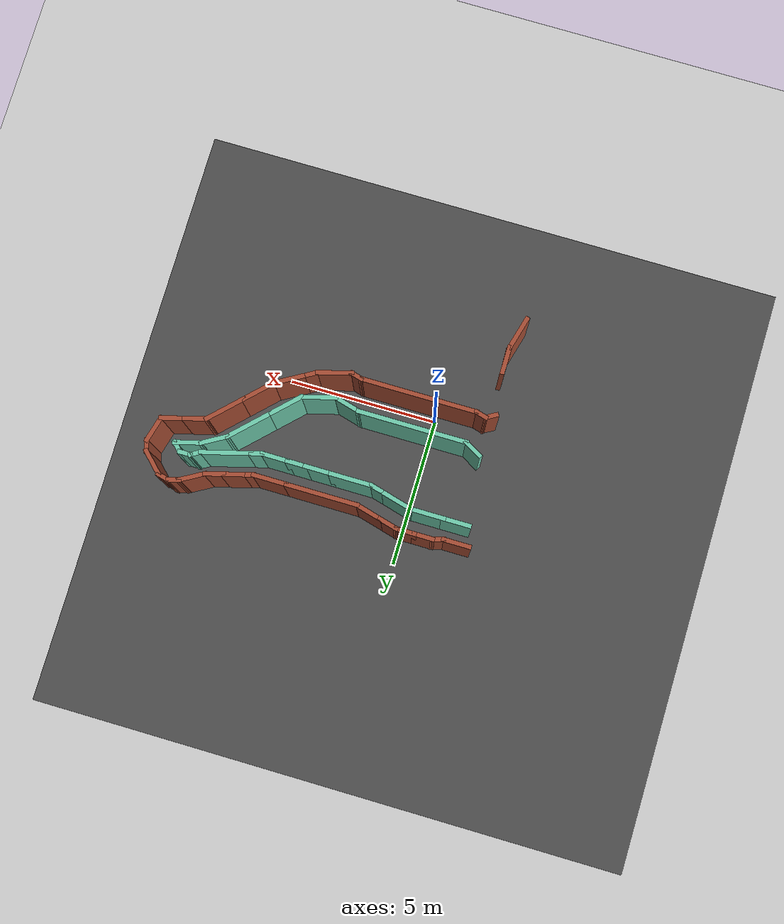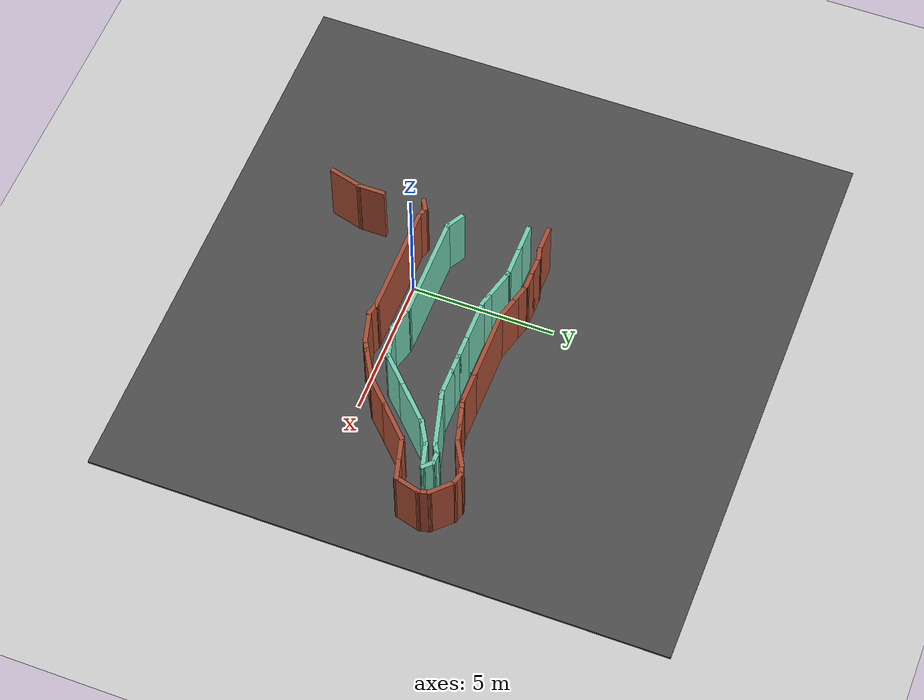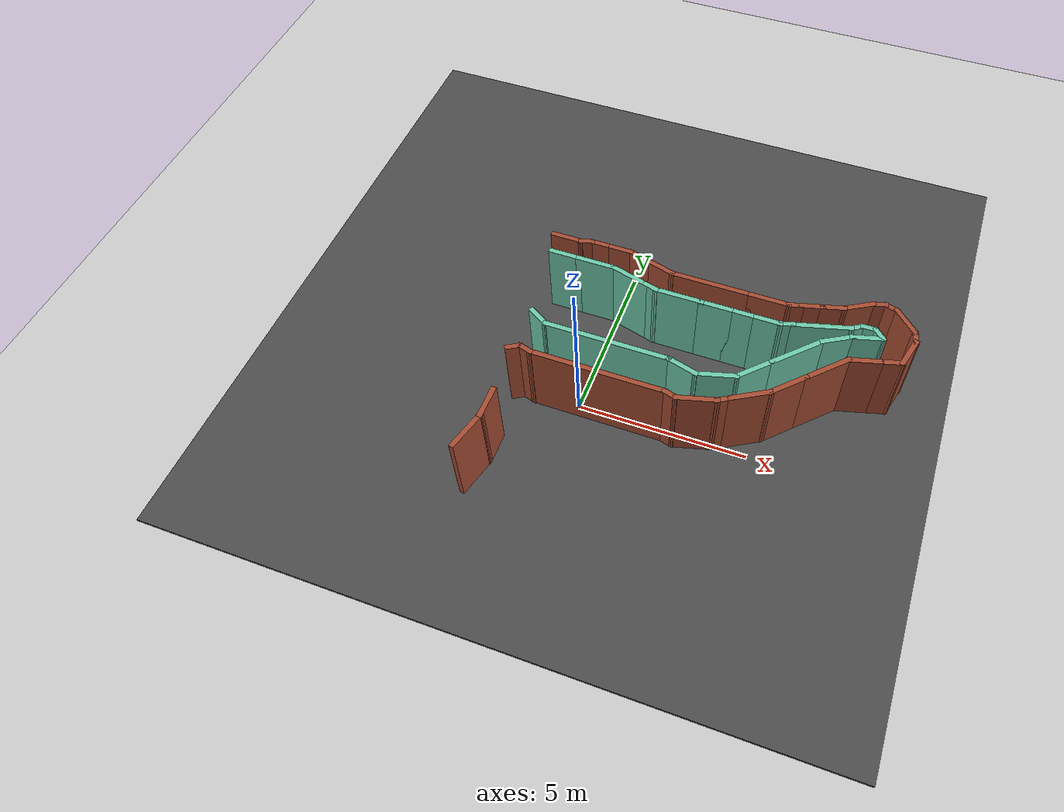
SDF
<sdf version="1.7">
 <world name="default">
  <model name="ground_plane">
   <static>1</static>
   <link name="link">
    <collision name="collision">
     <geometry><plane><normal>0 0 1</normal><size>100 100</size></plane></geometry>
     <surface><friction><ode><mu>100</mu><mu2>50</mu2></ode></friction></surface>
    </collision>
    <visual name="visual">
     <cast_shadows>0</cast_shadows>
     <geometry><plane><normal>0 0 1</normal><size>100 100</size></plane></geometry>
     <material>
      <script><uri>file://media/materials/scripts/gazebo.material</uri><name>Gazebo/Grey</name></script>
     </material>
    </visual>
   </link>
  </model>
  <model name="f1race">
   <pose>0.074946 0.030873 0 0 -0 0</pose>
   <link name="Wall_15">
    <collision name="Wall_15_Collision">
     <geometry><box><size>1 0.15 2.5</size></box></geometry>
     <pose>0 0 1.25 0 -0 0</pose>
    </collision>
    <visual name="Wall_15_Visual">
     <pose>0 0 1.25 0 -0 0</pose>
     <geometry><box><size>1 0.15 2.5</size></box></geometry>
     <material>
      <script><uri>file://media/materials/scripts/gazebo.material</uri><name>Gazebo/Bricks</name></script>
      <ambient>1 1 1 1</ambient>
     </material>
     <meta><layer>0</layer></meta>
    </visual>
    <pose>-1.90724 3.94835 0 0 -0 0</pose>
   </link>
   <link name="Wall_16">
    <collision name="Wall_16_Collision">
     <geometry><box><size>0.5 0.15 2.5</size></box></geometry>
     <pose>0 0 1.25 0 -0 0</pose>
    </collision>
    <visual name="Wall_16_Visual">
     <pose>0 0 1.25 0 -0 0</pose>
     <geometry><box><size>0.5 0.15 2.5</size></box></geometry>
     <material>
      <script><uri>file://media/materials/scripts/gazebo.material</uri><name>Gazebo/Bricks</name></script>
      <ambient>1 1 1 1</ambient>
     </material>
     <meta><layer>0</layer></meta>
    </visual>
    <pose>-1.3132 3.99365 0 0 -0 0.261799</pose>
   </link>
   <link name="Wall_17">
    <collision name="Wall_17_Collision">
     <geometry><box><size>0.75 0.15 2.5</size></box></geometry>
     <pose>0 0 1.25 0 -0 0</pose>
    </collision>
    <visual name="Wall_17_Visual">
     <pose>0 0 1.25 0 -0 0</pose>
     <geometry><box><size>0.75 0.15 2.5</size></box></geometry>
     <material>
      <script><uri>file://media/materials/scripts/gazebo.material</uri><name>Gazebo/Bricks</name></script>
      <ambient>1 1 1 1</ambient>
     </material>
     <meta><layer>0</layer></meta>
    </visual>
    <pose>-0.844161 4.03894 0 0 -0 0</pose>
   </link>
   <link name="Wall_18">
    <collision name="Wall_18_Collision">
     <geometry><box><size>0.75 0.15 2.5</size></box></geometry>
     <pose>0 0 1.25 0 -0 0</pose>
    </collision>
    <visual name="Wall_18_Visual">
     <pose>0 0 1.25 0 -0 0</pose>
     <geometry><box><size>0.75 0.15 2.5</size></box></geometry>
     <material>
      <script><uri>file://media/materials/scripts/gazebo.material</uri><name>Gazebo/Bricks</name></script>
      <ambient>1 1 1 1</ambient>
     </material>
     <meta><layer>0</layer></meta>
    </visual>
    <pose>-0.244161 4.03894 0 0 -0 0</pose>
   </link>
   <link name="Wall_19">
    <collision name="Wall_19_Collision">
     <geometry><box><size>0.75 0.15 2.5</size></box></geometry>
     <pose>0 0 1.25 0 -0 0</pose>
    </collision>
    <visual name="Wall_19_Visual">
     <pose>0 0 1.25 0 -0 0</pose>
     <geometry><box><size>0.75 0.15 2.5</size></box></geometry>
     <material>
      <script><uri>file://media/materials/scripts/gazebo.material</uri><name>Gazebo/Bricks</name></script>
      <ambient>1 1 1 1</ambient>
     </material>
     <meta><layer>0</layer></meta>
    </visual>
    <pose>0.345617 3.96129 0 0 -0 -0.261799</pose>
   </link>
   <link name="Wall_20">
    <collision name="Wall_20_Collision">
     <geometry><box><size>1 0.15 2.5</size></box></geometry>
     <pose>0 0 1.25 0 -0 0</pose>
    </collision>
    <visual name="Wall_20_Visual">
     <pose>0 0 1.25 0 -0 0</pose>
     <geometry><box><size>1 0.15 2.5</size></box></geometry>
     <material>
      <script><uri>file://media/materials/scripts/gazebo.material</uri><name>Gazebo/Bricks</name></script>
      <ambient>1 1 1 1</ambient>
     </material>
     <meta><layer>0</layer></meta>
    </visual>
    <pose>1.04591 3.77365 0 0 -0 -0.261799</pose>
   </link>
   <link name="Wall_21">
    <collision name="Wall_21_Collision">
     <geometry><box><size>2.5 0.15 2.5</size></box></geometry>
     <pose>0 0 1.25 0 -0 0</pose>
    </collision>
    <visual name="Wall_21_Visual">
     <pose>0 0 1.25 0 -0 0</pose>
     <geometry><box><size>2.5 0.15 2.5</size></box></geometry>
     <material>
      <script><uri>file://media/materials/scripts/gazebo.material</uri><name>Gazebo/Bricks</name></script>
      <ambient>1 1 1 1</ambient>
     </material>
     <meta><layer>0</layer></meta>
    </visual>
    <pose>2.63143 3.66365 0 0 -0 0</pose>
   </link>
   <link name="Wall_22">
    <collision name="Wall_22_Collision">
     <geometry><box><size>1.25 0.15 2.5</size></box></geometry>
     <pose>0 0 1.25 0 -0 0</pose>
    </collision>
    <visual name="Wall_22_Visual">
     <pose>0 0 1.25 0 -0 0</pose>
     <geometry><box><size>1.25 0.15 2.5</size></box></geometry>
     <material>
      <script><uri>file://media/materials/scripts/gazebo.material</uri><name>Gazebo/Bricks</name></script>
      <ambient>1 1 1 1</ambient>
     </material>
     <meta><layer>0</layer></meta>
    </visual>
    <pose>4.35643 3.66365 0 0 -0 0</pose>
   </link>
   <link name="Wall_23">
    <collision name="Wall_23_Collision">
     <geometry><box><size>0.5 0.15 2.5</size></box></geometry>
     <pose>0 0 1.25 0 -0 0</pose>
    </collision>
    <visual name="Wall_23_Visual">
     <pose>0 0 1.25 0 -0 0</pose>
     <geometry><box><size>0.5 0.15 2.5</size></box></geometry>
     <material>
      <script><uri>file://media/materials/scripts/gazebo.material</uri><name>Gazebo/Bricks</name></script>
      <ambient>1 1 1 1</ambient>
     </material>
     <meta><layer>0</layer></meta>
    </visual>
    <pose>5.07547 3.70895 0 0 -0 0.261799</pose>
   </link>
   <link name="Wall_24">
    <collision name="Wall_24_Collision">
     <geometry><box><size>0.75 0.15 2.5</size></box></geometry>
     <pose>0 0 1.25 0 -0 0</pose>
    </collision>
    <visual name="Wall_24_Visual">
     <pose>0 0 1.25 0 -0 0</pose>
     <geometry><box><size>0.75 0.15 2.5</size></box></geometry>
     <material>
      <script><uri>file://media/materials/scripts/gazebo.material</uri><name>Gazebo/Bricks</name></script>
      <ambient>1 1 1 1</ambient>
     </material>
     <meta><layer>0</layer></meta>
    </visual>
    <pose>5.53428 3.83189 0 0 -0 0.261799</pose>
   </link>
   <link name="Wall_25">
    <collision name="Wall_25_Collision">
     <geometry><box><size>0.75 0.15 2.5</size></box></geometry>
     <pose>0 0 1.25 0 -0 0</pose>
    </collision>
    <visual name="Wall_25_Visual">
     <pose>0 0 1.25 0 -0 0</pose>
     <geometry><box><size>0.75 0.15 2.5</size></box></geometry>
     <material>
      <script><uri>file://media/materials/scripts/gazebo.material</uri><name>Gazebo/Bricks</name></script>
      <ambient>1 1 1 1</ambient>
     </material>
     <meta><layer>0</layer></meta>
    </visual>
    <pose>6.11384 3.98718 0 0 -0 0.261799</pose>
   </link>
   <link name="Wall_26">
    <collision name="Wall_26_Collision">
     <geometry><box><size>1 0.15 2.5</size></box></geometry>
     <pose>0 0 1.25 0 -0 0</pose>
    </collision>
    <visual name="Wall_26_Visual">
     <pose>0 0 1.25 0 -0 0</pose>
     <geometry><box><size>1 0.15 2.5</size></box></geometry>
     <material>
      <script><uri>file://media/materials/scripts/gazebo.material</uri><name>Gazebo/Bricks</name></script>
      <ambient>1 1 1 1</ambient>
     </material>
     <meta><layer>0</layer></meta>
    </visual>
    <pose>6.77168 4.27732 0 0 -0 0.523599</pose>
   </link>
   <link name="Wall_27">
    <collision name="Wall_27_Collision">
     <geometry><box><size>0.5 0.15 2.5</size></box></geometry>
     <pose>0 0 1.25 0 -0 0</pose>
    </collision>
    <visual name="Wall_27_Visual">
     <pose>0 0 1.25 0 -0 0</pose>
     <geometry><box><size>0.5 0.15 2.5</size></box></geometry>
     <material>
      <script><uri>file://media/materials/scripts/gazebo.material</uri><name>Gazebo/Bricks</name></script>
      <ambient>1 1 1 1</ambient>
     </material>
     <meta><layer>0</layer></meta>
    </visual>
    <pose>7.30877 4.53512 0 0 -0 0.261799</pose>
   </link>
   <link name="Wall_28">
    <collision name="Wall_28_Collision">
     <geometry><box><size>0.5 0.15 2.5</size></box></geometry>
     <pose>0 0 1.25 0 -0 0</pose>
    </collision>
    <visual name="Wall_28_Visual">
     <pose>0 0 1.25 0 -0 0</pose>
     <geometry><box><size>0.5 0.15 2.5</size></box></geometry>
     <material>
      <script><uri>file://media/materials/scripts/gazebo.material</uri><name>Gazebo/Bricks</name></script>
      <ambient>1 1 1 1</ambient>
     </material>
     <meta><layer>0</layer></meta>
    </visual>
    <pose>7.64685 4.53512 0 0 -0 -0.261799</pose>
   </link>
   <link name="Wall_29">
    <collision name="Wall_29_Collision">
     <geometry><box><size>1 0.15 2.5</size></box></geometry>
     <pose>0 0 1.25 0 -0 0</pose>
    </collision>
    <visual name="Wall_29_Visual">
     <pose>0 0 1.25 0 -0 0</pose>
     <geometry><box><size>1 0.15 2.5</size></box></geometry>
     <material>
      <script><uri>file://media/materials/scripts/gazebo.material</uri><name>Gazebo/Bricks</name></script>
      <ambient>1 1 1 1</ambient>
     </material>
     <meta><layer>0</layer></meta>
    </visual>
    <pose>8.11641 4.1893 0 0 -0 -0.785398</pose>
   </link>
   <link name="Wall_30">
    <collision name="Wall_30_Collision">
     <geometry><box><size>0.5 0.15 2.5</size></box></geometry>
     <pose>0 0 1.25 0 -0 0</pose>
    </collision>
    <visual name="Wall_30_Visual">
     <pose>0 0 1.25 0 -0 0</pose>
     <geometry><box><size>0.5 0.15 2.5</size></box></geometry>
     <material>
      <script><uri>file://media/materials/scripts/gazebo.material</uri><name>Gazebo/Bricks</name></script>
      <ambient>1 1 1 1</ambient>
     </material>
     <meta><layer>0</layer></meta>
    </visual>
    <pose>8.46222 3.71974 0 0 -0 -1.309</pose>
   </link>
   <link name="Wall_31">
    <collision name="Wall_31_Collision">
     <geometry><box><size>1 0.15 2.5</size></box></geometry>
     <pose>0 0 1.25 0 -0 0</pose>
    </collision>
    <visual name="Wall_31_Visual">
     <pose>0 0 1.25 0 -0 0</pose>
     <geometry><box><size>1 0.15 2.5</size></box></geometry>
     <material>
      <script><uri>file://media/materials/scripts/gazebo.material</uri><name>Gazebo/Bricks</name></script>
      <ambient>1 1 1 1</ambient>
     </material>
     <meta><layer>0</layer></meta>
    </visual>
    <pose>8.39752 3.14019 0 0 -0 -1.8326</pose>
   </link>
   <link name="Wall_32">
    <collision name="Wall_32_Collision">
     <geometry><box><size>0.75 0.15 2.5</size></box></geometry>
     <pose>0 0 1.25 0 -0 0</pose>
    </collision>
    <visual name="Wall_32_Visual">
     <pose>0 0 1.25 0 -0 0</pose>
     <geometry><box><size>0.75 0.15 2.5</size></box></geometry>
     <material>
      <script><uri>file://media/materials/scripts/gazebo.material</uri><name>Gazebo/Bricks</name></script>
      <ambient>1 1 1 1</ambient>
     </material>
     <meta><layer>0</layer></meta>
    </visual>
    <pose>7.99774 2.65203 0 0 -0 -2.87979</pose>
   </link>
   <link name="Wall_33">
    <collision name="Wall_33_Collision">
     <geometry><box><size>1 0.15 2.5</size></box></geometry>
     <pose>0 0 1.25 0 -0 0</pose>
    </collision>
    <visual name="Wall_33_Visual">
     <pose>0 0 1.25 0 -0 0</pose>
     <geometry><box><size>1 0.15 2.5</size></box></geometry>
     <material>
      <script><uri>file://media/materials/scripts/gazebo.material</uri><name>Gazebo/Bricks</name></script>
      <ambient>1 1 1 1</ambient>
     </material>
     <meta><layer>0</layer></meta>
    </visual>
    <pose>7.29744 2.46438 0 0 -0 -2.87979</pose>
   </link>
   <link name="Wall_34">
    <collision name="Wall_34_Collision">
     <geometry><box><size>1.5 0.15 2.5</size></box></geometry>
     <pose>0 0 1.25 0 -0 0</pose>
    </collision>
    <visual name="Wall_34_Visual">
     <pose>0 0 1.25 0 -0 0</pose>
     <geometry><box><size>1.5 0.15 2.5</size></box></geometry>
     <material>
      <script><uri>file://media/materials/scripts/gazebo.material</uri><name>Gazebo/Bricks</name></script>
      <ambient>1 1 1 1</ambient>
     </material>
     <meta><layer>0</layer></meta>
    </visual>
    <pose>6.40963 1.87709 0 0 -0 -2.35619</pose>
   </link>
   <link name="Wall_35">
    <collision name="Wall_35_Collision">
     <geometry><box><size>1.25 0.15 2.5</size></box></geometry>
     <pose>0 0 1.25 0 -0 0</pose>
    </collision>
    <visual name="Wall_35_Visual">
     <pose>0 0 1.25 0 -0 0</pose>
     <geometry><box><size>1.25 0.15 2.5</size></box></geometry>
     <material>
      <script><uri>file://media/materials/scripts/gazebo.material</uri><name>Gazebo/Bricks</name></script>
      <ambient>1 1 1 1</ambient>
     </material>
     <meta><layer>0</layer></meta>
    </visual>
    <pose>5.54342 1.01088 0 0 -0 -2.35619</pose>
   </link>
   <link name="Wall_36">
    <collision name="Wall_36_Collision">
     <geometry><box><size>1.25 0.15 2.5</size></box></geometry>
     <pose>0 0 1.25 0 -0 0</pose>
    </collision>
    <visual name="Wall_36_Visual">
     <pose>0 0 1.25 0 -0 0</pose>
     <geometry><box><size>1.25 0.15 2.5</size></box></geometry>
     <material>
      <script><uri>file://media/materials/scripts/gazebo.material</uri><name>Gazebo/Bricks</name></script>
      <ambient>1 1 1 1</ambient>
     </material>
     <meta><layer>0</layer></meta>
    </visual>
    <pose>4.6782 0.346971 0 0 -0 -2.61799</pose>
   </link>
   <link name="Wall_37">
    <collision name="Wall_37_Collision">
     <geometry><box><size>0.5 0.15 2.5</size></box></geometry>
     <pose>0 0 1.25 0 -0 0</pose>
    </collision>
    <visual name="Wall_37_Visual">
     <pose>0 0 1.25 0 -0 0</pose>
     <geometry><box><size>0.5 0.15 2.5</size></box></geometry>
     <material>
      <script><uri>file://media/materials/scripts/gazebo.material</uri><name>Gazebo/Bricks</name></script>
      <ambient>1 1 1 1</ambient>
     </material>
     <meta><layer>0</layer></meta>
    </visual>
    <pose>4.05033 -0.015529 0 0 -0 -2.61799</pose>
   </link>
   <link name="Wall_38">
    <collision name="Wall_38_Collision">
     <geometry><box><size>1.25 0.15 2.5</size></box></geometry>
     <pose>0 0 1.25 0 -0 0</pose>
    </collision>
    <visual name="Wall_38_Visual">
     <pose>0 0 1.25 0 -0 0</pose>
     <geometry><box><size>1.25 0.15 2.5</size></box></geometry>
     <material>
      <script><uri>file://media/materials/scripts/gazebo.material</uri><name>Gazebo/Bricks</name></script>
      <ambient>1 1 1 1</ambient>
     </material>
     <meta><layer>0</layer></meta>
    </visual>
    <pose>3.36752 -0.245379 0 0 -0 -2.87979</pose>
   </link>
   <link name="Wall_39">
    <collision name="Wall_39_Collision">
     <geometry><box><size>0.5 0.15 2.5</size></box></geometry>
     <pose>0 0 1.25 0 -0 0</pose>
    </collision>
    <visual name="Wall_39_Visual">
     <pose>0 0 1.25 0 -0 0</pose>
     <geometry><box><size>0.5 0.15 2.5</size></box></geometry>
     <material>
      <script><uri>file://media/materials/scripts/gazebo.material</uri><name>Gazebo/Bricks</name></script>
      <ambient>1 1 1 1</ambient>
     </material>
     <meta><layer>0</layer></meta>
    </visual>
    <pose>2.66722 -0.342436 0 0 -0 2.87979</pose>
   </link>
   <link name="Wall_40">
    <collision name="Wall_40_Collision">
     <geometry><box><size>4 0.15 2.5</size></box></geometry>
     <pose>0 0 1.25 0 -0 0</pose>
    </collision>
    <visual name="Wall_40_Visual">
     <pose>0 0 1.25 0 -0 0</pose>
     <geometry><box><size>4 0.15 2.5</size></box></geometry>
     <material>
      <script><uri>file://media/materials/scripts/gazebo.material</uri><name>Gazebo/Bricks</name></script>
      <ambient>1 1 1 1</ambient>
     </material>
     <meta><layer>0</layer></meta>
    </visual>
    <pose>0.573184 -0.297143 0 0 -0 3.14159</pose>
   </link>
   <link name="Wall_41">
    <collision name="Wall_41_Collision">
     <geometry><box><size>0.5 0.15 2.5</size></box></geometry>
     <pose>0 0 1.25 0 -0 0</pose>
    </collision>
    <visual name="Wall_41_Visual">
     <pose>0 0 1.25 0 -0 0</pose>
     <geometry><box><size>0.5 0.15 2.5</size></box></geometry>
     <material>
      <script><uri>file://media/materials/scripts/gazebo.material</uri><name>Gazebo/Bricks</name></script>
      <ambient>1 1 1 1</ambient>
     </material>
     <meta><layer>0</layer></meta>
    </visual>
    <pose>-1.52085 -0.25185 0 0 -0 2.87979</pose>
   </link>
   <link name="Wall_42">
    <collision name="Wall_42_Collision">
     <geometry><box><size>0.5 0.15 2.5</size></box></geometry>
     <pose>0 0 1.25 0 -0 0</pose>
    </collision>
    <visual name="Wall_42_Visual">
     <pose>0 0 1.25 0 -0 0</pose>
     <geometry><box><size>0.5 0.15 2.5</size></box></geometry>
     <material>
      <script><uri>file://media/materials/scripts/gazebo.material</uri><name>Gazebo/Bricks</name></script>
      <ambient>1 1 1 1</ambient>
     </material>
     <meta><layer>0</layer></meta>
    </visual>
    <pose>-1.84144 -0.294056 0 0 -0 -2.61799</pose>
   </link>
   <link name="Wall_45">
    <collision name="Wall_45_Collision">
     <geometry><box><size>1 0.15 2.5</size></box></geometry>
     <pose>0 0 1.25 0 -0 0</pose>
    </collision>
    <visual name="Wall_45_Visual">
     <pose>0 0 1.25 0 -0 0</pose>
     <geometry><box><size>1 0.15 2.5</size></box></geometry>
     <material>
      <script><uri>file://media/materials/scripts/gazebo.material</uri><name>Gazebo/Bricks</name></script>
      <ambient>1 1 1 1</ambient>
     </material>
     <meta><layer>0</layer></meta>
    </visual>
    <pose>-1.79889 -2.20715 0 0 -0 -1.5708</pose>
   </link>
   <link name="Wall_46">
    <collision name="Wall_46_Collision">
     <geometry><box><size>1.25 0.15 2.5</size></box></geometry>
     <pose>0 0 1.25 0 -0 0</pose>
    </collision>
    <visual name="Wall_46_Visual">
     <pose>0 0 1.25 0 -0 0</pose>
     <geometry><box><size>1.25 0.15 2.5</size></box></geometry>
     <material>
      <script><uri>file://media/materials/scripts/gazebo.material</uri><name>Gazebo/Bricks</name></script>
      <ambient>1 1 1 1</ambient>
     </material>
     <meta><layer>0</layer></meta>
    </visual>
    <pose>-1.94124 -3.16341 0 0 -0 -1.8326</pose>
   </link>
   <link name="Wall_71">
    <collision name="Wall_71_Collision">
     <geometry><box><size>1 0.15 2.5</size></box></geometry>
     <pose>0 0 1.25 0 -0 0</pose>
    </collision>
    <visual name="Wall_71_Visual">
     <pose>0 0 1.25 0 -0 0</pose>
     <geometry><box><size>1 0.15 2.5</size></box></geometry>
     <material>
      <script><uri>file://media/materials/scripts/gazebo.material</uri><name>Gazebo/Grey</name></script>
      <ambient>0.435294 0.796078 0.67451 1</ambient>
     </material>
     <meta><layer>0</layer></meta>
    </visual>
    <pose>-1.72601 3.30617 0 0 -0 0</pose>
   </link>
   <link name="Wall_72">
    <collision name="Wall_72_Collision">
     <geometry><box><size>1.25 0.15 2.5</size></box></geometry>
     <pose>0 0 1.25 0 -0 0</pose>
    </collision>
    <visual name="Wall_72_Visual">
     <pose>0 0 1.25 0 -0 0</pose>
     <geometry><box><size>1.25 0.15 2.5</size></box></geometry>
     <material>
      <script><uri>file://media/materials/scripts/gazebo.material</uri><name>Gazebo/Grey</name></script>
      <ambient>0.435294 0.796078 0.67451 1</ambient>
     </material>
     <meta><layer>0</layer></meta>
    </visual>
    <pose>-0.751007 3.30617 0 0 -0 0</pose>
   </link>
   <link name="Wall_73">
    <collision name="Wall_73_Collision">
     <geometry><box><size>1.25 0.15 2.5</size></box></geometry>
     <pose>0 0 1.25 0 -0 0</pose>
    </collision>
    <visual name="Wall_73_Visual">
     <pose>0 0 1.25 0 -0 0</pose>
     <geometry><box><size>1.25 0.15 2.5</size></box></geometry>
     <material>
      <script><uri>file://media/materials/scripts/gazebo.material</uri><name>Gazebo/Grey</name></script>
      <ambient>0.435294 0.796078 0.67451 1</ambient>
     </material>
     <meta><layer>0</layer></meta>
    </visual>
    <pose>0.330252 3.16382 0 0 -0 -0.261799</pose>
   </link>
   <link name="Wall_74">
    <collision name="Wall_74_Collision">
     <geometry><box><size>0.5 0.15 2.5</size></box></geometry>
     <pose>0 0 1.25 0 -0 0</pose>
    </collision>
    <visual name="Wall_74_Visual">
     <pose>0 0 1.25 0 -0 0</pose>
     <geometry><box><size>0.5 0.15 2.5</size></box></geometry>
     <material>
      <script><uri>file://media/materials/scripts/gazebo.material</uri><name>Gazebo/Grey</name></script>
      <ambient>0.435294 0.796078 0.67451 1</ambient>
     </material>
     <meta><layer>0</layer></meta>
    </visual>
    <pose>1.03055 2.97618 0 0 -0 -0.261799</pose>
   </link>
   <link name="Wall_75">
    <collision name="Wall_75_Collision">
     <geometry><box><size>1.5 0.15 2.5</size></box></geometry>
     <pose>0 0 1.25 0 -0 0</pose>
    </collision>
    <visual name="Wall_75_Visual">
     <pose>0 0 1.25 0 -0 0</pose>
     <geometry><box><size>1.5 0.15 2.5</size></box></geometry>
     <material>
      <script><uri>file://media/materials/scripts/gazebo.material</uri><name>Gazebo/Grey</name></script>
      <ambient>0.435294 0.796078 0.67451 1</ambient>
     </material>
     <meta><layer>0</layer></meta>
    </visual>
    <pose>1.87459 2.93088 0 0 -0 0</pose>
   </link>
   <link name="Wall_76">
    <collision name="Wall_76_Collision">
     <geometry><box><size>1 0.15 2.5</size></box></geometry>
     <pose>0 0 1.25 0 -0 0</pose>
    </collision>
    <visual name="Wall_76_Visual">
     <pose>0 0 1.25 0 -0 0</pose>
     <geometry><box><size>1 0.15 2.5</size></box></geometry>
     <material>
      <script><uri>file://media/materials/scripts/gazebo.material</uri><name>Gazebo/Grey</name></script>
      <ambient>0.435294 0.796078 0.67451 1</ambient>
     </material>
     <meta><layer>0</layer></meta>
    </visual>
    <pose>2.97459 2.93088 0 0 -0 0</pose>
   </link>
   <link name="Wall_77">
    <collision name="Wall_77_Collision">
     <geometry><box><size>0.75 0.15 2.5</size></box></geometry>
     <pose>0 0 1.25 0 -0 0</pose>
    </collision>
    <visual name="Wall_77_Visual">
     <pose>0 0 1.25 0 -0 0</pose>
     <geometry><box><size>0.75 0.15 2.5</size></box></geometry>
     <material>
      <script><uri>file://media/materials/scripts/gazebo.material</uri><name>Gazebo/Grey</name></script>
      <ambient>0.435294 0.796078 0.67451 1</ambient>
     </material>
     <meta><layer>0</layer></meta>
    </visual>
    <pose>3.69958 2.93088 0 0 -0 0</pose>
   </link>
   <link name="Wall_78">
    <collision name="Wall_78_Collision">
     <geometry><box><size>1 0.15 2.5</size></box></geometry>
     <pose>0 0 1.25 0 -0 0</pose>
    </collision>
    <visual name="Wall_78_Visual">
     <pose>0 0 1.25 0 -0 0</pose>
     <geometry><box><size>1 0.15 2.5</size></box></geometry>
     <material>
      <script><uri>file://media/materials/scripts/gazebo.material</uri><name>Gazebo/Grey</name></script>
      <ambient>0.435294 0.796078 0.67451 1</ambient>
     </material>
     <meta><layer>0</layer></meta>
    </visual>
    <pose>4.42459 2.93088 0 0 -0 0</pose>
   </link>
   <link name="Wall_79">
    <collision name="Wall_79_Collision">
     <geometry><box><size>0.5 0.15 2.5</size></box></geometry>
     <pose>0 0 1.25 0 -0 0</pose>
    </collision>
    <visual name="Wall_79_Visual">
     <pose>0 0 1.25 0 -0 0</pose>
     <geometry><box><size>0.5 0.15 2.5</size></box></geometry>
     <material>
      <script><uri>file://media/materials/scripts/gazebo.material</uri><name>Gazebo/Grey</name></script>
      <ambient>0.435294 0.796078 0.67451 1</ambient>
     </material>
     <meta><layer>0</layer></meta>
    </visual>
    <pose>5.01862 2.97618 0 0 -0 0.261799</pose>
   </link>
   <link name="Wall_80">
    <collision name="Wall_80_Collision">
     <geometry><box><size>1.75 0.15 2.5</size></box></geometry>
     <pose>0 0 1.25 0 -0 0</pose>
    </collision>
    <visual name="Wall_80_Visual">
     <pose>0 0 1.25 0 -0 0</pose>
     <geometry><box><size>1.75 0.15 2.5</size></box></geometry>
     <material>
      <script><uri>file://media/materials/scripts/gazebo.material</uri><name>Gazebo/Grey</name></script>
      <ambient>0.435294 0.796078 0.67451 1</ambient>
     </material>
     <meta><layer>0</layer></meta>
    </visual>
    <pose>5.9604 3.22852 0 0 -0 0.261799</pose>
   </link>
   <link name="Wall_81">
    <collision name="Wall_81_Collision">
     <geometry><box><size>0.5 0.15 2.5</size></box></geometry>
     <pose>0 0 1.25 0 -0 0</pose>
    </collision>
    <visual name="Wall_81_Visual">
     <pose>0 0 1.25 0 -0 0</pose>
     <geometry><box><size>0.5 0.15 2.5</size></box></geometry>
     <material>
      <script><uri>file://media/materials/scripts/gazebo.material</uri><name>Gazebo/Grey</name></script>
      <ambient>0.435294 0.796078 0.67451 1</ambient>
     </material>
     <meta><layer>0</layer></meta>
    </visual>
    <pose>6.8847 3.52308 0 0 -0 0.523599</pose>
   </link>
   <link name="Wall_82">
    <collision name="Wall_82_Collision">
     <geometry><box><size>0.5 0.15 2.5</size></box></geometry>
     <pose>0 0 1.25 0 -0 0</pose>
    </collision>
    <visual name="Wall_82_Visual">
     <pose>0 0 1.25 0 -0 0</pose>
     <geometry><box><size>0.5 0.15 2.5</size></box></geometry>
     <material>
      <script><uri>file://media/materials/scripts/gazebo.material</uri><name>Gazebo/Grey</name></script>
      <ambient>0.435294 0.796078 0.67451 1</ambient>
     </material>
     <meta><layer>0</layer></meta>
    </visual>
    <pose>7.21125 3.61058 0 0 -0 0</pose>
   </link>
   <link name="Wall_83">
    <collision name="Wall_83_Collision">
     <geometry><box><size>0.5 0.15 2.5</size></box></geometry>
     <pose>0 0 1.25 0 -0 0</pose>
    </collision>
    <visual name="Wall_83_Visual">
     <pose>0 0 1.25 0 -0 0</pose>
     <geometry><box><size>0.5 0.15 2.5</size></box></geometry>
     <material>
      <script><uri>file://media/materials/scripts/gazebo.material</uri><name>Gazebo/Grey</name></script>
      <ambient>0.435294 0.796078 0.67451 1</ambient>
     </material>
     <meta><layer>0</layer></meta>
    </visual>
    <pose>7.50999 3.48684 0 0 -0 -0.785398</pose>
   </link>
   <link name="Wall_84">
    <collision name="Wall_84_Collision">
     <geometry><box><size>1 0.15 2.5</size></box></geometry>
     <pose>0 0 1.25 0 -0 0</pose>
    </collision>
    <visual name="Wall_84_Visual">
     <pose>0 0 1.25 0 -0 0</pose>
     <geometry><box><size>1 0.15 2.5</size></box></geometry>
     <material>
      <script><uri>file://media/materials/scripts/gazebo.material</uri><name>Gazebo/Grey</name></script>
      <ambient>0.435294 0.796078 0.67451 1</ambient>
     </material>
     <meta><layer>0</layer></meta>
    </visual>
    <pose>7.22322 3.25309 0 0 -0 -2.87979</pose>
   </link>
   <link name="Wall_85">
    <collision name="Wall_85_Collision">
     <geometry><box><size>1 0.15 2.5</size></box></geometry>
     <pose>0 0 1.25 0 -0 0</pose>
    </collision>
    <visual name="Wall_85_Visual">
     <pose>0 0 1.25 0 -0 0</pose>
     <geometry><box><size>1 0.15 2.5</size></box></geometry>
     <material>
      <script><uri>file://media/materials/scripts/gazebo.material</uri><name>Gazebo/Grey</name></script>
      <ambient>0.435294 0.796078 0.67451 1</ambient>
     </material>
     <meta><layer>0</layer></meta>
    </visual>
    <pose>6.44464 2.93059 0 0 -0 -2.61799</pose>
   </link>
   <link name="Wall_86">
    <collision name="Wall_86_Collision">
     <geometry><box><size>1.75 0.15 2.5</size></box></geometry>
     <pose>0 0 1.25 0 -0 0</pose>
    </collision>
    <visual name="Wall_86_Visual">
     <pose>0 0 1.25 0 -0 0</pose>
     <geometry><box><size>1.75 0.15 2.5</size></box></geometry>
     <material>
      <script><uri>file://media/materials/scripts/gazebo.material</uri><name>Gazebo/Grey</name></script>
      <ambient>0.435294 0.796078 0.67451 1</ambient>
     </material>
     <meta><layer>0</layer></meta>
    </visual>
    <pose>5.51089 2.15241 0 0 -0 -2.35619</pose>
   </link>
   <link name="Wall_87">
    <collision name="Wall_87_Collision">
     <geometry><box><size>1.25 0.15 2.5</size></box></geometry>
     <pose>0 0 1.25 0 -0 0</pose>
    </collision>
    <visual name="Wall_87_Visual">
     <pose>0 0 1.25 0 -0 0</pose>
     <geometry><box><size>1.25 0.15 2.5</size></box></geometry>
     <material>
      <script><uri>file://media/materials/scripts/gazebo.material</uri><name>Gazebo/Grey</name></script>
      <ambient>0.435294 0.796078 0.67451 1</ambient>
     </material>
     <meta><layer>0</layer></meta>
    </visual>
    <pose>4.5563 1.19782 0 0 -0 -2.35619</pose>
   </link>
   <link name="Wall_88">
    <collision name="Wall_88_Collision">
     <geometry><box><size>1.25 0.15 2.5</size></box></geometry>
     <pose>0 0 1.25 0 -0 0</pose>
    </collision>
    <visual name="Wall_88_Visual">
     <pose>0 0 1.25 0 -0 0</pose>
     <geometry><box><size>1.25 0.15 2.5</size></box></geometry>
     <material>
      <script><uri>file://media/materials/scripts/gazebo.material</uri><name>Gazebo/Grey</name></script>
      <ambient>0.435294 0.796078 0.67451 1</ambient>
     </material>
     <meta><layer>0</layer></meta>
    </visual>
    <pose>3.63613 0.666557 0 0 -0 -2.87979</pose>
   </link>
   <link name="Wall_89">
    <collision name="Wall_89_Collision">
     <geometry><box><size>1 0.15 2.5</size></box></geometry>
     <pose>0 0 1.25 0 -0 0</pose>
    </collision>
    <visual name="Wall_89_Visual">
     <pose>0 0 1.25 0 -0 0</pose>
     <geometry><box><size>1 0.15 2.5</size></box></geometry>
     <material>
      <script><uri>file://media/materials/scripts/gazebo.material</uri><name>Gazebo/Grey</name></script>
      <ambient>0.435294 0.796078 0.67451 1</ambient>
     </material>
     <meta><layer>0</layer></meta>
    </visual>
    <pose>2.69435 0.634204 0 0 -0 2.87979</pose>
   </link>
   <link name="Wall_90">
    <collision name="Wall_90_Collision">
     <geometry><box><size>3.75 0.15 2.5</size></box></geometry>
     <pose>0 0 1.25 0 -0 0</pose>
    </collision>
    <visual name="Wall_90_Visual">
     <pose>0 0 1.25 0 -0 0</pose>
     <geometry><box><size>3.75 0.15 2.5</size></box></geometry>
     <material>
      <script><uri>file://media/materials/scripts/gazebo.material</uri><name>Gazebo/Grey</name></script>
      <ambient>0.435294 0.796078 0.67451 1</ambient>
     </material>
     <meta><layer>0</layer></meta>
    </visual>
    <pose>0.483835 0.744202 0 0 -0 3.14159</pose>
   </link>
   <link name="Wall_91">
    <collision name="Wall_91_Collision">
     <geometry><box><size>0.75 0.15 2.5</size></box></geometry>
     <pose>0 0 1.25 0 -0 0</pose>
    </collision>
    <visual name="Wall_91_Visual">
     <pose>0 0 1.25 0 -0 0</pose>
     <geometry><box><size>0.75 0.15 2.5</size></box></geometry>
     <material>
      <script><uri>file://media/materials/scripts/gazebo.material</uri><name>Gazebo/Grey</name></script>
      <ambient>0.435294 0.796078 0.67451 1</ambient>
     </material>
     <meta><layer>0</layer></meta>
    </visual>
    <pose>-1.57597 0.894202 0 0 -0 2.61799</pose>
   </link>
   <static>1</static>
  </model>
  <model name="asphalt_plane">
   <static>1</static>
   <link name="link">
    <collision name="collision">
     <geometry><box><size>20 20 0.1</size></box></geometry>
     <surface><friction><ode><mu>0.5</mu><mu2>0.3</mu2></ode></friction></surface>
    </collision>
    <visual name="visual">
     <cast_shadows>0</cast_shadows>
     <geometry><box><size>20 20 0.1</size></box></geometry>
     <material>
      <script>
       <uri>model://asphalt_plane/materials/scripts</uri>
       <uri>model://asphalt_plane/materials/textures</uri>
       <name>vrc/asphalt</name>
      </script>
     </material>
    </visual>
   </link>
   <pose>0.075192 2.56336 0 0 -0 0</pose>
  </model>
 </world>
</sdf>
